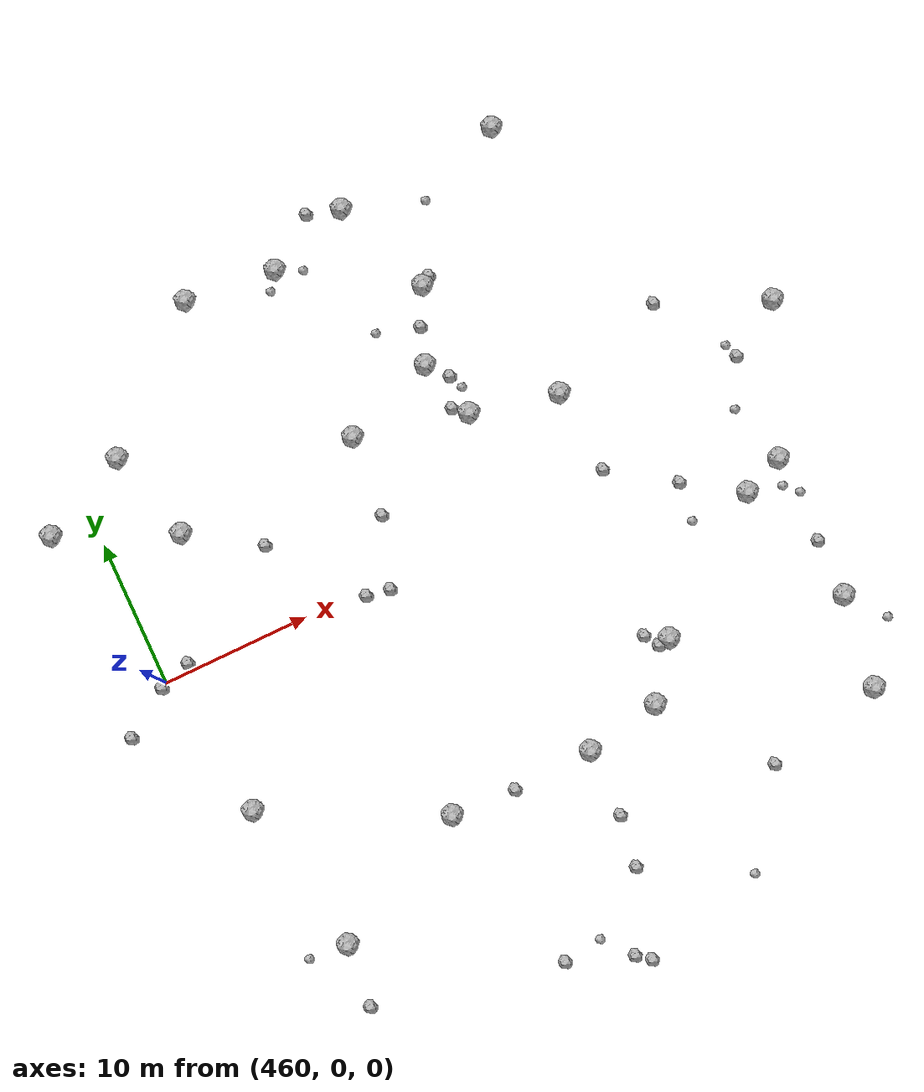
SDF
<sdf version="1.6">
 <world name="default">
  <include><uri>model://sun</uri></include>
  <model name="rock1_12_4">
   <include><uri>model://rock1</uri><pose>491.4915438837999 6.319746800352583 0.5 0 0 0</pose></include>
  </model>
  <model name="rock1_12_5">
   <include><uri>model://rock1</uri><pose>486.4499932637186 16.89915959383915 0.5 0 0 0</pose></include>
  </model>
  <model name="rock1_12_6">
   <include><uri>model://rock1</uri><pose>507.1619928368459 5.960343020348297 0.5 0 0 0</pose></include>
  </model>
  <model name="rock1_12_7">
   <include><uri>model://rock1</uri><pose>477.85136813265984 9.518386824848513 0.5 0 0 0</pose></include>
  </model>
  <model name="rock1_12_8">
   <include><uri>model://rock1</uri><pose>483.76731659033373 24.05839085980488 0.5 0 0 0</pose></include>
  </model>
  <model name="rock1_12_9">
   <include><uri>model://rock1</uri><pose>461.74927373754014 -9.909525792221242 0.5 0 0 0</pose></include>
  </model>
  <model name="rock1_12_10">
   <include><uri>model://rock1</uri><pose>477.95859070299406 22.11717985703247 0.5 0 0 0</pose></include>
  </model>
  <model name="rock1_12_11">
   <include><uri>model://rock1</uri><pose>473.1622112058742 -15.669736092852165 0.5 0 0 0</pose></include>
  </model>
  <model name="rock1_12_12">
   <include><uri>model://rock1</uri><pose>488.0759706964319 -14.90236288892508 0.5 0 0 0</pose></include>
  </model>
  <model name="rock1_12_13">
   <include><uri>model://rock1</uri><pose>501.35633857678386 -20.01040811959257 0.5 0 0 0</pose></include>
  </model>
  <model name="rock1_12_14">
   <include><uri>model://rock1</uri><pose>463.2174846159909 14.890892687977065 0.5 0 0 0</pose></include>
  </model>
  <model name="rock1_12_15">
   <include><uri>model://rock1</uri><pose>457.20044003293594 11.993756450528878 0.5 0 0 0</pose></include>
  </model>
  <model name="rock1_12_16">
   <include><uri>model://rock1</uri><pose>484.26104790430406 11.879518873345084 0.5 0 0 0</pose></include>
  </model>
  <model name="rock1_12_17">
   <include><uri>model://rock1</uri><pose>499.74785348906374 -5.009875763256954 0.5 0 0 0</pose></include>
  </model>
  <model name="rock1_12_18">
   <include><uri>model://rock1</uri><pose>502.6079939207929 -3.8716593043025327 0.5 0 0 0</pose></include>
  </model>
  <model name="rock1_12_19">
   <include><uri>model://rock1</uri><pose>495.4129240735099 24.912407505968197 0.5 0 0 0</pose></include>
  </model>
  <model name="rock1_12_20">
   <include><uri>model://rock1</uri><pose>471.65756467318477 22.762520536470653 0.5 0 0 0</pose></include>
  </model>
  <model name="rock1_12_21">
   <include><uri>model://rock1</uri><pose>482.965314351126 -15.779527125380547 0.5 0 0 0</pose></include>
  </model>
  <model name="rock1_12_22">
   <include><uri>model://rock1</uri><pose>464.9611307211343 8.508001082689333 0.5 0 0 0</pose></include>
  </model>
  <model name="rock1_12_23">
   <include><uri>model://rock1</uri><pose>463.69403433546756 -20.158642656548874 0.5 0 0 0</pose></include>
  </model>
  <model name="rock1_12_24">
   <include><uri>model://rock1</uri><pose>490.7824138149415 -11.44469131797663 0.5 0 0 0</pose></include>
  </model>
  <model name="rock1_12_25">
   <include><uri>model://rock1</uri><pose>485.5017761886735 7.674405472716231 0.5 0 0 0</pose></include>
  </model>
  <model name="rock1_12_26">
   <include><uri>model://rock1</uri><pose>502.3457912257073 -13.809606764123817 0.5 0 0 0</pose></include>
  </model>
  <model name="rock2_12_0">
   <include><uri>model://rock2</uri><pose>477.3436086964734 3.9576974640174356 0.3 0 0 0</pose></include>
  </model>
  <model name="rock2_12_1">
   <include><uri>model://rock2</uri><pose>482.34102089736405 -23.69876284209949 0.3 0 0 0</pose></include>
  </model>
  <model name="rock2_12_2">
   <include><uri>model://rock2</uri><pose>487.0847455023884 17.361633525182803 0.3 0 0 0</pose></include>
  </model>
  <model name="rock2_12_3">
   <include><uri>model://rock2</uri><pose>479.83331564236926 -28.64246023767101 0.3 0 0 0</pose></include>
  </model>
  <model name="rock2_12_4">
   <include><uri>model://rock2</uri><pose>484.5837591114498 8.484908231085996 0.3 0 0 0</pose></include>
  </model>
  <model name="rock2_12_5">
   <include><uri>model://rock2</uri><pose>485.07828686740237 14.413290753559956 0.3 0 0 0</pose></include>
  </model>
  <model name="rock2_12_6">
   <include><uri>model://rock2</uri><pose>474.15429884342103 -0.4413188313007268 0.3 0 0 0</pose></include>
  </model>
  <model name="rock2_12_7">
   <include><uri>model://rock2</uri><pose>480.70156597456196 -29.333832758272447 0.3 0 0 0</pose></include>
  </model>
  <model name="rock2_12_8">
   <include><uri>model://rock2</uri><pose>485.39648288614507 10.503503070006182 0.3 0 0 0</pose></include>
  </model>
  <model name="rock2_12_9">
   <include><uri>model://rock2</uri><pose>459.6275528993755 -0.2166447326349754 0.3 0 0 0</pose></include>
  </model>
  <model name="rock2_12_10">
   <include><uri>model://rock2</uri><pose>482.87785279319945 -20.326042154892697 0.3 0 0 0</pose></include>
  </model>
  <model name="rock2_12_11">
   <include><uri>model://rock2</uri><pose>475.7568722168367 -0.7270740803428524 0.3 0 0 0</pose></include>
  </model>
  <model name="rock2_12_12">
   <include><uri>model://rock2</uri><pose>491.80903945287974 0.44917814175296655 0.3 0 0 0</pose></include>
  </model>
  <model name="rock2_12_13">
   <include><uri>model://rock2</uri><pose>489.37883732491025 -10.591027576562205 0.3 0 0 0</pose></include>
  </model>
  <model name="rock2_12_14">
   <include><uri>model://rock2</uri><pose>469.5696723260901 5.431960166244956 0.3 0 0 0</pose></include>
  </model>
  <model name="rock2_12_15">
   <include><uri>model://rock2</uri><pose>493.3125741404702 -21.67285550285806 0.3 0 0 0</pose></include>
  </model>
  <model name="rock2_12_16">
   <include><uri>model://rock2</uri><pose>499.829536780569 9.168824166583725 0.3 0 0 0</pose></include>
  </model>
  <model name="rock2_12_17">
   <include><uri>model://rock2</uri><pose>477.4874109794609 -15.962730580302615 0.3 0 0 0</pose></include>
  </model>
  <model name="rock2_12_18">
   <include><uri>model://rock2</uri><pose>502.4663103360901 -9.878754644201692 0.3 0 0 0</pose></include>
  </model>
  <model name="rock2_12_19">
   <include><uri>model://rock2</uri><pose>503.2371685230584 3.5209514033693807 0.3 0 0 0</pose></include>
  </model>
  <model name="rock2_12_20">
   <include><uri>model://rock2</uri><pose>475.64419503911614 -27.094749242298036 0.3 0 0 0</pose></include>
  </model>
  <model name="rock2_12_21">
   <include><uri>model://rock2</uri><pose>489.9789965309654 -11.562152376643382 0.3 0 0 0</pose></include>
  </model>
  <model name="rock2_12_22">
   <include><uri>model://rock2</uri><pose>461.82455122083707 0.5441521024941132 0.3 0 0 0</pose></include>
  </model>
  <model name="rock2_12_23">
   <include><uri>model://rock2</uri><pose>463.3121466786779 -24.29006128341685 0.3 0 0 0</pose></include>
  </model>
  <model name="rock2_12_24">
   <include><uri>model://rock2</uri><pose>481.4444807149241 24.782227928582593 0.3 0 0 0</pose></include>
  </model>
  <model name="rock2_12_25">
   <include><uri>model://rock2</uri><pose>495.98955116875493 -2.4987172416972925 0.3 0 0 0</pose></include>
  </model>
  <model name="rock2_12_26">
   <include><uri>model://rock2</uri><pose>456.55226092413074 -2.3334136834683825 0.3 0 0 0</pose></include>
  </model>
  <model name="rock3_12_0">
   <include><uri>model://rock3</uri><pose>502.9042318304246 -6.502184446871514 0.2 0 0 0</pose></include>
  </model>
  <model name="rock3_12_1">
   <include><uri>model://rock3</uri><pose>489.01493454127495 -27.38464353519462 0.2 0 0 0</pose></include>
  </model>
  <model name="rock3_12_2">
   <include><uri>model://rock3</uri><pose>502.9268179562083 4.503114639560081 0.2 0 0 0</pose></include>
  </model>
  <model name="rock3_12_3">
   <include><uri>model://rock3</uri><pose>489.1454569734145 22.211486232450298 0.2 0 0 0</pose></include>
  </model>
  <model name="rock3_12_4">
   <include><uri>model://rock3</uri><pose>477.0482564606003 20.92199059882897 0.2 0 0 0</pose></include>
  </model>
  <model name="rock3_12_5">
   <include><uri>model://rock3</uri><pose>504.2943022243336 -16.35675879122688 0.2 0 0 0</pose></include>
  </model>
  <model name="rock3_12_6">
   <include><uri>model://rock3</uri><pose>478.25712227516647 -26.827028588456507 0.2 0 0 0</pose></include>
  </model>
  <model name="rock3_12_7">
   <include><uri>model://rock3</uri><pose>482.19596770405326 15.287452517647111 0.2 0 0 0</pose></include>
  </model>
  <model name="rock3_12_8">
   <include><uri>model://rock3</uri><pose>495.6081539981666 -5.187405861525555 0.2 0 0 0</pose></include>
  </model>
  <model name="rock3_12_9">
   <include><uri>model://rock3</uri><pose>502.05083666536757 -5.637112019489315 0.2 0 0 0</pose></include>
  </model>
  <model name="rock3_12_10">
   <include><uri>model://rock3</uri><pose>479.6482633668994 21.31636307184411 0.2 0 0 0</pose></include>
  </model>
  <model name="rock3_12_11">
   <include><uri>model://rock3</uri><pose>485.8165341607637 9.496116021051904 0.2 0 0 0</pose></include>
  </model>
  <model name="rock3_12_12">
   <include><uri>model://rock3</uri><pose>501.51779152264214 0.3260837213144505 0.2 0 0 0</pose></include>
  </model>
  <model name="rock3_12_13">
   <include><uri>model://rock3</uri><pose>461.0406019985495 -19.979785638793373 0.2 0 0 0</pose></include>
  </model>
 </world>
</sdf>
